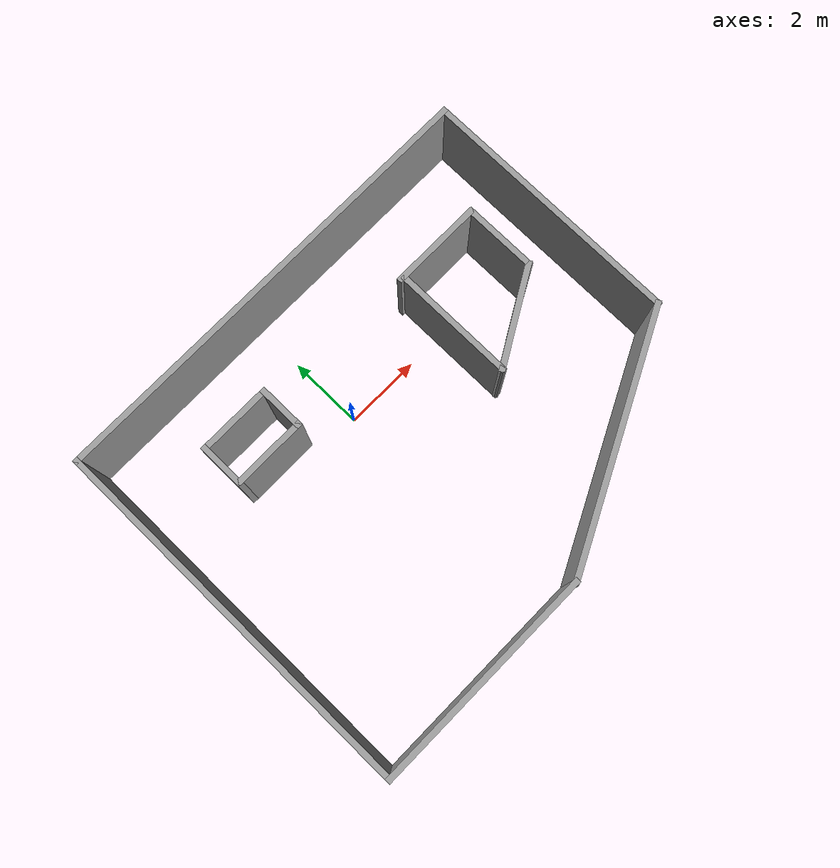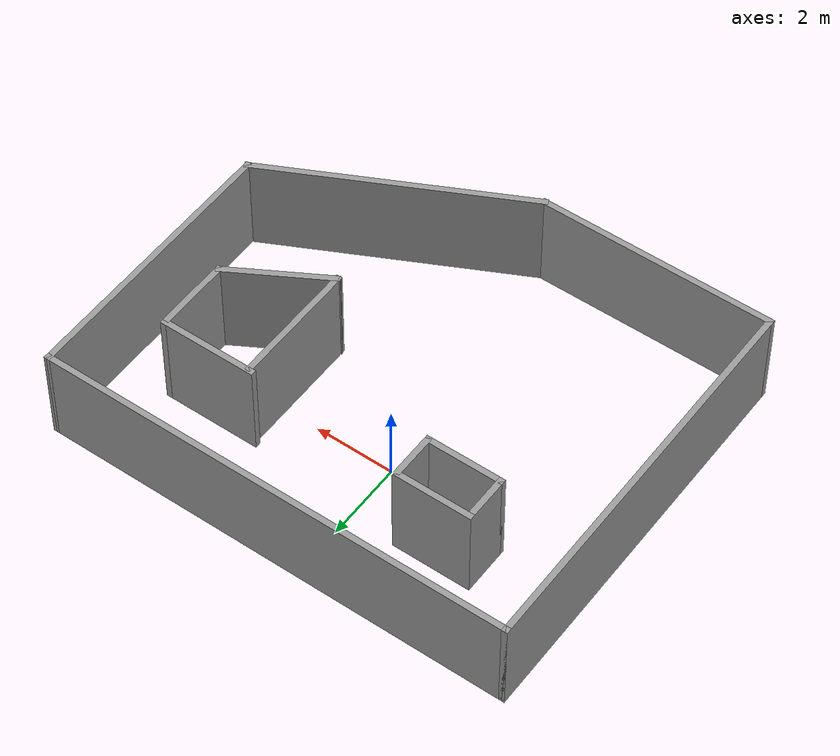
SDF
<sdf version="1.7">
 <world name="default">
  <scene><ambient>0.4 0.4 0.4 1</ambient><background>0.7 0.7 0.7 1</background><shadows>1</shadows></scene>
  <light name="sun" type="directional">
   <pose>0 0 10 0 -0 0</pose>
   <diffuse>0.8 0.8 0.8 1</diffuse>
   <specular>0.2 0.2 0.2 1</specular>
   <attenuation>
    <range>1000</range>
    <constant>0.9</constant>
    <linear>0.01</linear>
    <quadratic>0.001</quadratic>
   </attenuation>
   <direction>-0.5 0.1 -0.9</direction>
   <spot><inner_angle>0</inner_angle><outer_angle>0</outer_angle><falloff>0</falloff></spot>
  </light>
  <physics type="ode">
   <real_time_update_rate>1000</real_time_update_rate>
   <max_step_size>0.001</max_step_size>
   <real_time_factor>1</real_time_factor>
   <ode>
    <solver>
     <type>quick</type>
     <iters>150</iters>
     <precon_iters>0</precon_iters>
     <sor>1.4</sor>
     <use_dynamic_moi_rescaling>1</use_dynamic_moi_rescaling>
    </solver>
    <constraints>
     <cfm>1e-05</cfm>
     <erp>0.2</erp>
     <contact_max_correcting_vel>2000</contact_max_correcting_vel>
     <contact_surface_layer>0.01</contact_surface_layer>
    </constraints>
   </ode>
  </physics>
  <gravity>0 0 -9.8</gravity>
  <magnetic_field>6e-06 2.3e-05 -4.2e-05</magnetic_field>
  <atmosphere type="adiabatic"/>
  <spherical_coordinates>
   <surface_model>EARTH_WGS84</surface_model>
   <latitude_deg>0</latitude_deg>
   <longitude_deg>0</longitude_deg>
   <elevation>0</elevation>
   <heading_deg>0</heading_deg>
  </spherical_coordinates>
  <model name="world5">
   <pose>0.637567 -1.60778 0 0 -0 0</pose>
   <link name="Wall_11">
    <collision name="Wall_11_Collision">
     <geometry><box><size>6 0.15 2.5</size></box></geometry>
     <pose>0 0 1.25 0 -0 0</pose>
    </collision>
    <visual name="Wall_11_Visual">
     <pose>0 0 1.25 0 -0 0</pose>
     <geometry><box><size>6 0.15 2.5</size></box></geometry>
     <material>
      <script><uri>file://media/materials/scripts/gazebo.material</uri><name>Gazebo/Grey</name></script>
      <ambient>1 1 1 1</ambient>
     </material>
     <meta><layer>0</layer></meta>
    </visual>
    <pose>-3.00082 -4.91219 0 0 -0 0</pose>
   </link>
   <link name="Wall_12">
    <collision name="Wall_12_Collision">
     <geometry><box><size>6.8582 0.15 2.5</size></box></geometry>
     <pose>0 0 1.25 0 -0 0</pose>
    </collision>
    <visual name="Wall_12_Visual">
     <pose>0 0 1.25 0 -0 0</pose>
     <geometry><box><size>6.8582 0.15 2.5</size></box></geometry>
     <material>
      <script><uri>file://media/materials/scripts/gazebo.material</uri><name>Gazebo/Grey</name></script>
      <ambient>1 1 1 1</ambient>
     </material>
     <meta><layer>0</layer></meta>
    </visual>
    <pose>2.92418 -3.41219 0 0 -0 0.463648</pose>
   </link>
   <link name="Wall_15">
    <collision name="Wall_15_Collision">
     <geometry><box><size>1.25 0.15 2.5</size></box></geometry>
     <pose>0 0 1.25 0 -0 0</pose>
    </collision>
    <visual name="Wall_15_Visual">
     <pose>0 0 1.25 0 -0 0</pose>
     <geometry><box><size>1.25 0.15 2.5</size></box></geometry>
     <material>
      <script><uri>file://media/materials/scripts/gazebo.material</uri><name>Gazebo/Grey</name></script>
      <ambient>1 1 1 1</ambient>
     </material>
     <meta><layer>0</layer></meta>
    </visual>
    <pose>-3.72232 2.5364 0 0 -0 1.5708</pose>
   </link>
   <link name="Wall_16">
    <collision name="Wall_16_Collision">
     <geometry><box><size>2 0.15 2.5</size></box></geometry>
     <pose>0 0 1.25 0 -0 0</pose>
    </collision>
    <visual name="Wall_16_Visual">
     <pose>0 0 1.25 0 -0 0</pose>
     <geometry><box><size>2 0.15 2.5</size></box></geometry>
     <material>
      <script><uri>file://media/materials/scripts/gazebo.material</uri><name>Gazebo/Grey</name></script>
      <ambient>1 1 1 1</ambient>
     </material>
     <meta><layer>0</layer></meta>
    </visual>
    <pose>-2.79732 3.08641 0 0 -0 0</pose>
   </link>
   <link name="Wall_17">
    <collision name="Wall_17_Collision">
     <geometry><box><size>1.25 0.15 2.5</size></box></geometry>
     <pose>0 0 1.25 0 -0 0</pose>
    </collision>
    <visual name="Wall_17_Visual">
     <pose>0 0 1.25 0 -0 0</pose>
     <geometry><box><size>1.25 0.15 2.5</size></box></geometry>
     <material>
      <script><uri>file://media/materials/scripts/gazebo.material</uri><name>Gazebo/Grey</name></script>
      <ambient>1 1 1 1</ambient>
     </material>
     <meta><layer>0</layer></meta>
    </visual>
    <pose>-1.87232 2.5364 0 0 -0 -1.5708</pose>
   </link>
   <link name="Wall_18">
    <collision name="Wall_18_Collision">
     <geometry><box><size>2 0.15 2.5</size></box></geometry>
     <pose>0 0 1.25 0 -0 0</pose>
    </collision>
    <visual name="Wall_18_Visual">
     <pose>0 0 1.25 0 -0 0</pose>
     <geometry><box><size>2 0.15 2.5</size></box></geometry>
     <material>
      <script><uri>file://media/materials/scripts/gazebo.material</uri><name>Gazebo/Grey</name></script>
      <ambient>1 1 1 1</ambient>
     </material>
     <meta><layer>0</layer></meta>
    </visual>
    <pose>-2.79732 1.9864 0 0 -0 3.14159</pose>
   </link>
   <link name="Wall_20">
    <collision name="Wall_20_Collision">
     <geometry><box><size>3.25 0.15 2.5</size></box></geometry>
     <pose>0 0 1.25 0 -0 0</pose>
    </collision>
    <visual name="Wall_20_Visual">
     <pose>0 0 1.25 0 -0 0</pose>
     <geometry><box><size>3.25 0.15 2.5</size></box></geometry>
     <material>
      <script><uri>file://media/materials/scripts/gazebo.material</uri><name>Gazebo/Grey</name></script>
      <ambient>1 1 1 1</ambient>
     </material>
     <meta><layer>0</layer></meta>
    </visual>
    <pose>2.28933 1.12801 0 0 -0 -1.5708</pose>
   </link>
   <link name="Wall_21">
    <collision name="Wall_21_Collision">
     <geometry><box><size>2.75 0.15 2.5</size></box></geometry>
     <pose>0 0 1.25 0 -0 0</pose>
    </collision>
    <visual name="Wall_21_Visual">
     <pose>0 0 1.25 0 -0 0</pose>
     <geometry><box><size>2.75 0.15 2.5</size></box></geometry>
     <material>
      <script><uri>file://media/materials/scripts/gazebo.material</uri><name>Gazebo/Grey</name></script>
      <ambient>1 1 1 1</ambient>
     </material>
     <meta><layer>0</layer></meta>
    </visual>
    <pose>3.41516 0.22801 0 0 -0 0.523599</pose>
   </link>
   <link name="Wall_25">
    <collision name="Wall_25_Collision">
     <geometry><box><size>2 0.15 2.5</size></box></geometry>
     <pose>0 0 1.25 0 -0 0</pose>
    </collision>
    <visual name="Wall_25_Visual">
     <pose>0 0 1.25 0 -0 0</pose>
     <geometry><box><size>2 0.15 2.5</size></box></geometry>
     <material>
      <script><uri>file://media/materials/scripts/gazebo.material</uri><name>Gazebo/Grey</name></script>
      <ambient>1 1 1 1</ambient>
     </material>
     <meta><layer>0</layer></meta>
    </visual>
    <pose>4.54099 1.80301 0 0 -0 1.5708</pose>
   </link>
   <link name="Wall_26">
    <collision name="Wall_26_Collision">
     <geometry><box><size>2.48 0.15 2.5</size></box></geometry>
     <pose>0 0 1.25 0 -0 0</pose>
    </collision>
    <visual name="Wall_26_Visual">
     <pose>0 0 1.25 0 -0 0</pose>
     <geometry><box><size>2.48 0.15 2.5</size></box></geometry>
     <material>
      <script><uri>file://media/materials/scripts/gazebo.material</uri><name>Gazebo/Grey</name></script>
      <ambient>1 1 1 1</ambient>
     </material>
     <meta><layer>0</layer></meta>
    </visual>
    <pose>3.37599 2.72801 0 0 -0 3.14159</pose>
   </link>
   <link name="Wall_5">
    <collision name="Wall_5_Collision">
     <geometry><box><size>10 0.15 2.5</size></box></geometry>
     <pose>0 0 1.25 0 -0 0</pose>
    </collision>
    <visual name="Wall_5_Visual">
     <pose>0 0 1.25 0 -0 0</pose>
     <geometry><box><size>10 0.15 2.5</size></box></geometry>
     <material>
      <script><uri>file://media/materials/scripts/gazebo.material</uri><name>Gazebo/Grey</name></script>
      <ambient>1 1 1 1</ambient>
     </material>
     <meta><layer>0</layer></meta>
    </visual>
    <pose>-5.92582 0.012811 0 0 -0 1.5708</pose>
   </link>
   <link name="Wall_7">
    <collision name="Wall_7_Collision">
     <geometry><box><size>12 0.15 2.5</size></box></geometry>
     <pose>0 0 1.25 0 -0 0</pose>
    </collision>
    <visual name="Wall_7_Visual">
     <pose>0 0 1.25 0 -0 0</pose>
     <geometry><box><size>12 0.15 2.5</size></box></geometry>
     <material>
      <script><uri>file://media/materials/scripts/gazebo.material</uri><name>Gazebo/Grey</name></script>
      <ambient>1 1 1 1</ambient>
     </material>
     <meta><layer>0</layer></meta>
    </visual>
    <pose>-0.000818 4.93781 0 0 -0 0</pose>
   </link>
   <link name="Wall_9">
    <collision name="Wall_9_Collision">
     <geometry><box><size>7 0.15 2.5</size></box></geometry>
     <pose>0 0 1.25 0 -0 0</pose>
    </collision>
    <visual name="Wall_9_Visual">
     <pose>0 0 1.25 0 -0 0</pose>
     <geometry><box><size>7 0.15 2.5</size></box></geometry>
     <material>
      <script><uri>file://media/materials/scripts/gazebo.material</uri><name>Gazebo/Grey</name></script>
      <ambient>1 1 1 1</ambient>
     </material>
     <meta><layer>0</layer></meta>
    </visual>
    <pose>5.92418 1.51281 0 0 -0 -1.5708</pose>
   </link>
   <static>1</static>
  </model>
 </world>
</sdf>
